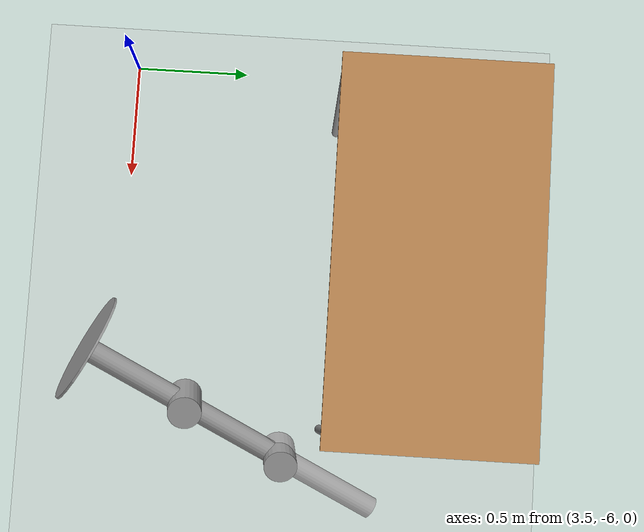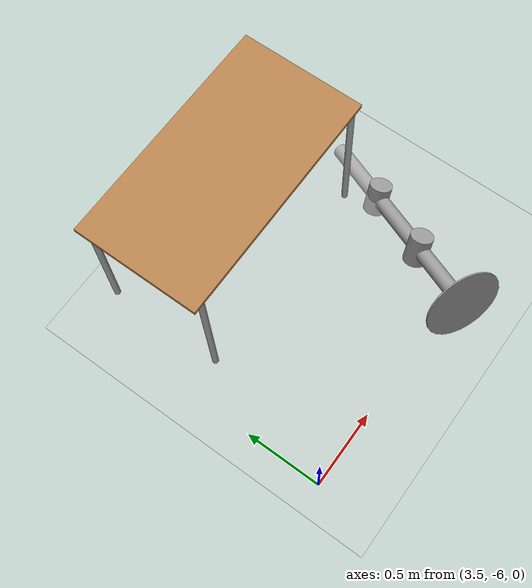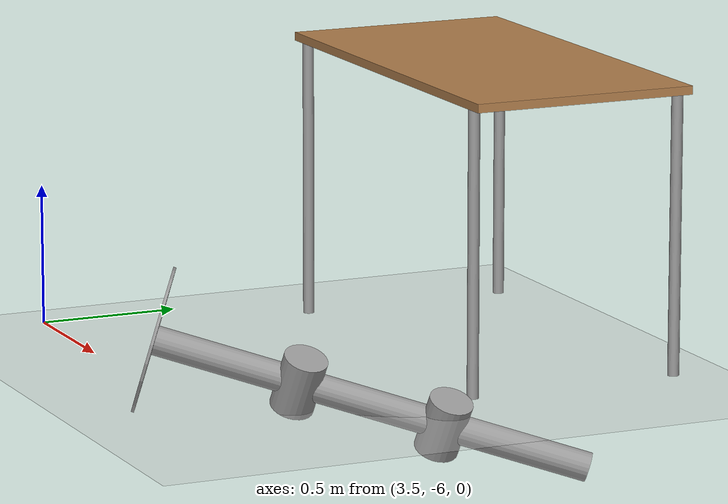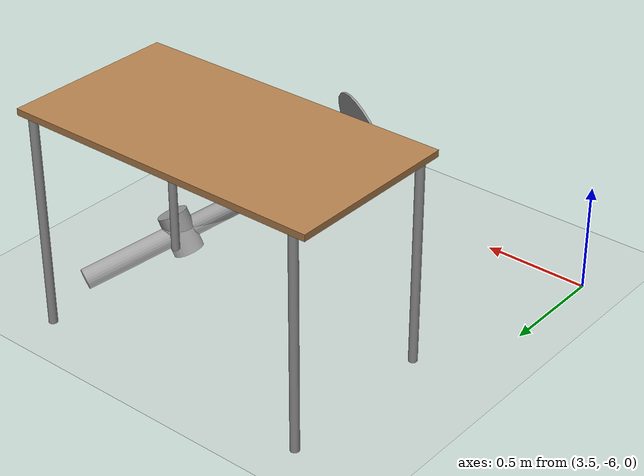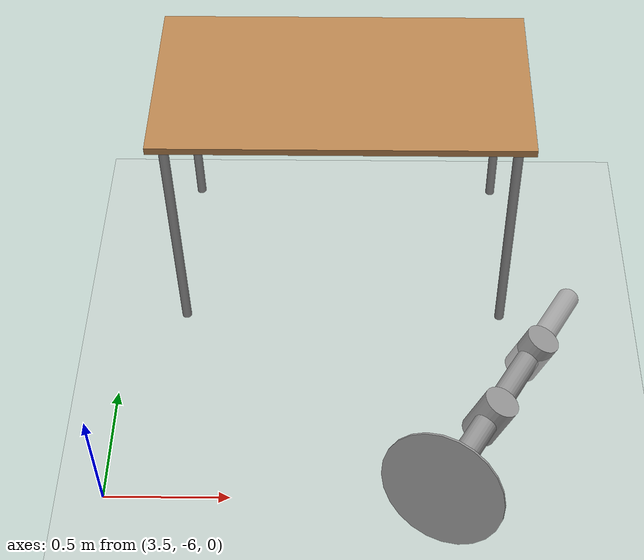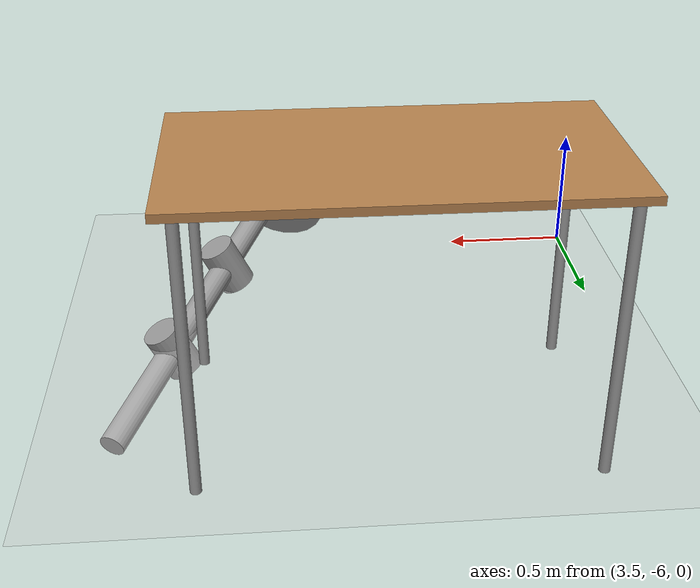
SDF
<sdf version="1.7">
 <world name="default">
  <model name="ground_plane">
   <static>1</static>
   <link name="link">
    <collision name="collision">
     <geometry><plane><normal>0 0 1</normal><size>100 100</size></plane></geometry>
     <surface>
      <contact><collide_bitmask>65535</collide_bitmask></contact>
      <friction><ode><mu>100</mu><mu2>50</mu2></ode></friction>
     </surface>
    </collision>
    <visual name="visual">
     <cast_shadows>0</cast_shadows>
     <geometry><plane><normal>0 0 1</normal><size>100 100</size></plane></geometry>
     <material>
      <script><uri>file://media/materials/scripts/gazebo.material</uri><name>Gazebo/Grey</name></script>
     </material>
    </visual>
   </link>
  </model>
  <model name="table">
   <static>1</static>
   <link name="link">
    <collision name="surface">
     <pose>0 0 1 0 -0 0</pose>
     <geometry><box><size>1.5 0.8 0.03</size></box></geometry>
     <surface><friction><ode><mu>0.6</mu><mu2>0.6</mu2></ode></friction></surface>
    </collision>
    <visual name="visual1">
     <pose>0 0 1 0 -0 0</pose>
     <geometry><box><size>1.5 0.8 0.03</size></box></geometry>
     <material>
      <script><uri>file://media/materials/scripts/gazebo.material</uri><name>Gazebo/Wood</name></script>
     </material>
    </visual>
    <collision name="front_left_leg">
     <pose>0.68 0.38 0.5 0 -0 0</pose>
     <geometry><cylinder><radius>0.02</radius><length>1</length></cylinder></geometry>
    </collision>
    <visual name="front_left_leg">
     <pose>0.68 0.38 0.5 0 -0 0</pose>
     <geometry><cylinder><radius>0.02</radius><length>1</length></cylinder></geometry>
     <material>
      <script><uri>file://media/materials/scripts/gazebo.material</uri><name>Gazebo/Grey</name></script>
     </material>
    </visual>
    <collision name="front_right_leg">
     <pose>0.68 -0.38 0.5 0 -0 0</pose>
     <geometry><cylinder><radius>0.02</radius><length>1</length></cylinder></geometry>
    </collision>
    <visual name="front_right_leg">
     <pose>0.68 -0.38 0.5 0 -0 0</pose>
     <geometry><cylinder><radius>0.02</radius><length>1</length></cylinder></geometry>
     <material>
      <script><uri>file://media/materials/scripts/gazebo.material</uri><name>Gazebo/Grey</name></script>
     </material>
    </visual>
    <collision name="back_right_leg">
     <pose>-0.68 -0.38 0.5 0 -0 0</pose>
     <geometry><cylinder><radius>0.02</radius><length>1</length></cylinder></geometry>
    </collision>
    <visual name="back_right_leg">
     <pose>-0.68 -0.38 0.5 0 -0 0</pose>
     <geometry><cylinder><radius>0.02</radius><length>1</length></cylinder></geometry>
     <material>
      <script><uri>file://media/materials/scripts/gazebo.material</uri><name>Gazebo/Grey</name></script>
     </material>
    </visual>
    <collision name="back_left_leg">
     <pose>-0.68 0.38 0.5 0 -0 0</pose>
     <geometry><cylinder><radius>0.02</radius><length>1</length></cylinder></geometry>
    </collision>
    <visual name="back_left_leg">
     <pose>-0.68 0.38 0.5 0 -0 0</pose>
     <geometry><cylinder><radius>0.02</radius><length>1</length></cylinder></geometry>
     <material>
      <script><uri>file://media/materials/scripts/gazebo.material</uri><name>Gazebo/Grey</name></script>
     </material>
    </visual>
   </link>
   <pose>4.42625 -4.69298 0 0 -0 0</pose>
  </model>
  <model name="ArmRobot">
   <link name="link_1">
    <pose>0 0 -0.375 0 -0 0</pose>
    <inertial>
     <mass>1</mass>
     <inertia><ixx>0.145833</ixx><ixy>0</ixy><ixz>0</ixz><iyy>0.145833</iyy><iyz>0</iyz><izz>0.125</izz></inertia>
    </inertial>
    <visual name="visual">
     <geometry><cylinder><radius>0.05</radius><length>0.5</length></cylinder></geometry>
     <material>
      <lighting>1</lighting>
      <script><uri>file://media/materials/scripts/gazebo.material</uri><name>Gazebo/Grey</name></script>
      <shader type="pixel"><normal_map>__default__</normal_map></shader>
      <ambient>0.3 0.3 0.3 1</ambient>
      <diffuse>0.7 0.7 0.7 1</diffuse>
      <specular>0.01 0.01 0.01 1</specular>
      <emissive>0 0 0 1</emissive>
     </material>
    </visual>
    <collision name="collision">
     <geometry><cylinder><radius>0.05</radius><length>0.5</length></cylinder></geometry>
     <surface>
      <friction>
       <ode><mu>1</mu><mu2>1</mu2><fdir1>0 0 0</fdir1><slip1>0</slip1><slip2>0</slip2></ode>
       <torsional>
        <coefficient>1</coefficient>
        <patch_radius>0</patch_radius>
        <surface_radius>0</surface_radius>
        <use_patch_radius>1</use_patch_radius>
        <ode><slip>0</slip></ode>
       </torsional>
      </friction>
      <bounce><restitution_coefficient>0</restitution_coefficient><threshold>1e+06</threshold></bounce>
      <contact>
       <collide_without_contact>0</collide_without_contact>
       <collide_without_contact_bitmask>1</collide_without_contact_bitmask>
       <collide_bitmask>1</collide_bitmask>
       <ode>
        <soft_cfm>0</soft_cfm>
        <soft_erp>0.2</soft_erp>
        <kp>1e+13</kp>
        <kd>1</kd>
        <max_vel>0.01</max_vel>
        <min_depth>0</min_depth>
       </ode>
       <bullet>
        <split_impulse>1</split_impulse>
        <split_impulse_penetration_threshold>-0.01</split_impulse_penetration_threshold>
        <soft_cfm>0</soft_cfm>
        <soft_erp>0.2</soft_erp>
        <kp>1e+13</kp>
        <kd>1</kd>
       </bullet>
      </contact>
     </surface>
    </collision>
   </link>
   <link name="link_1_clone">
    <pose>0 0 0.125 0 -0 0</pose>
    <inertial>
     <mass>1</mass>
     <inertia><ixx>0.145833</ixx><ixy>0</ixy><ixz>0</ixz><iyy>0.145833</iyy><iyz>0</iyz><izz>0.125</izz></inertia>
    </inertial>
    <visual name="visual">
     <geometry><cylinder><radius>0.05</radius><length>0.5</length></cylinder></geometry>
     <material>
      <lighting>1</lighting>
      <script><uri>file://media/materials/scripts/gazebo.material</uri><name>Gazebo/Grey</name></script>
      <shader type="pixel"><normal_map>__default__</normal_map></shader>
      <ambient>0.3 0.3 0.3 1</ambient>
      <diffuse>0.7 0.7 0.7 1</diffuse>
      <specular>0.01 0.01 0.01 1</specular>
      <emissive>0 0 0 1</emissive>
     </material>
    </visual>
    <collision name="collision">
     <geometry><cylinder><radius>0.05</radius><length>0.5</length></cylinder></geometry>
     <surface>
      <friction>
       <ode><mu>1</mu><mu2>1</mu2><fdir1>0 0 0</fdir1><slip1>0</slip1><slip2>0</slip2></ode>
       <torsional>
        <coefficient>1</coefficient>
        <patch_radius>0</patch_radius>
        <surface_radius>0</surface_radius>
        <use_patch_radius>1</use_patch_radius>
        <ode><slip>0</slip></ode>
       </torsional>
      </friction>
      <bounce><restitution_coefficient>0</restitution_coefficient><threshold>1e+06</threshold></bounce>
      <contact>
       <collide_without_contact>0</collide_without_contact>
       <collide_without_contact_bitmask>1</collide_without_contact_bitmask>
       <collide_bitmask>1</collide_bitmask>
       <ode>
        <soft_cfm>0</soft_cfm>
        <soft_erp>0.2</soft_erp>
        <kp>1e+13</kp>
        <kd>1</kd>
        <max_vel>0.01</max_vel>
        <min_depth>0</min_depth>
       </ode>
       <bullet>
        <split_impulse>1</split_impulse>
        <split_impulse_penetration_threshold>-0.01</split_impulse_penetration_threshold>
        <soft_cfm>0</soft_cfm>
        <soft_erp>0.2</soft_erp>
        <kp>1e+13</kp>
        <kd>1</kd>
       </bullet>
      </contact>
     </surface>
    </collision>
   </link>
   <link name="link_1_clone_clone">
    <pose>0 0 0.625 0 -0 0</pose>
    <inertial>
     <mass>1</mass>
     <inertia><ixx>0.145833</ixx><ixy>0</ixy><ixz>0</ixz><iyy>0.145833</iyy><iyz>0</iyz><izz>0.125</izz></inertia>
    </inertial>
    <visual name="visual">
     <geometry><cylinder><radius>0.05</radius><length>0.5</length></cylinder></geometry>
     <material>
      <lighting>1</lighting>
      <script><uri>file://media/materials/scripts/gazebo.material</uri><name>Gazebo/Grey</name></script>
      <shader type="pixel"><normal_map>__default__</normal_map></shader>
      <ambient>0.3 0.3 0.3 1</ambient>
      <diffuse>0.7 0.7 0.7 1</diffuse>
      <specular>0.01 0.01 0.01 1</specular>
      <emissive>0 0 0 1</emissive>
     </material>
    </visual>
    <collision name="collision">
     <geometry><cylinder><radius>0.05</radius><length>0.5</length></cylinder></geometry>
     <surface>
      <friction>
       <ode><mu>1</mu><mu2>1</mu2><fdir1>0 0 0</fdir1><slip1>0</slip1><slip2>0</slip2></ode>
       <torsional>
        <coefficient>1</coefficient>
        <patch_radius>0</patch_radius>
        <surface_radius>0</surface_radius>
        <use_patch_radius>1</use_patch_radius>
        <ode><slip>0</slip></ode>
       </torsional>
      </friction>
      <bounce><restitution_coefficient>0</restitution_coefficient><threshold>1e+06</threshold></bounce>
      <contact>
       <collide_without_contact>0</collide_without_contact>
       <collide_without_contact_bitmask>1</collide_without_contact_bitmask>
       <collide_bitmask>1</collide_bitmask>
       <ode>
        <soft_cfm>0</soft_cfm>
        <soft_erp>0.2</soft_erp>
        <kp>1e+13</kp>
        <kd>1</kd>
        <max_vel>0.01</max_vel>
        <min_depth>0</min_depth>
       </ode>
       <bullet>
        <split_impulse>1</split_impulse>
        <split_impulse_penetration_threshold>-0.01</split_impulse_penetration_threshold>
        <soft_cfm>0</soft_cfm>
        <soft_erp>0.2</soft_erp>
        <kp>1e+13</kp>
        <kd>1</kd>
       </bullet>
      </contact>
     </surface>
    </collision>
   </link>
   <link name="link_2">
    <pose>0 0 -0.625 0 -0 0</pose>
    <inertial>
     <mass>1</mass>
     <inertia><ixx>0.145833</ixx><ixy>0</ixy><ixz>0</ixz><iyy>0.145833</iyy><iyz>0</iyz><izz>0.125</izz></inertia>
    </inertial>
    <visual name="visual">
     <geometry><cylinder><radius>0.25</radius><length>0.01</length></cylinder></geometry>
     <material>
      <lighting>1</lighting>
      <script><uri>file://media/materials/scripts/gazebo.material</uri><name>Gazebo/Grey</name></script>
      <shader type="pixel"><normal_map>__default__</normal_map></shader>
      <ambient>0.3 0.3 0.3 1</ambient>
      <diffuse>0.7 0.7 0.7 1</diffuse>
      <specular>0.01 0.01 0.01 1</specular>
      <emissive>0 0 0 1</emissive>
     </material>
    </visual>
    <collision name="collision">
     <geometry><cylinder><radius>0.25</radius><length>0.01</length></cylinder></geometry>
     <surface>
      <friction>
       <ode><mu>1</mu><mu2>1</mu2><fdir1>0 0 0</fdir1><slip1>0</slip1><slip2>0</slip2></ode>
       <torsional>
        <coefficient>1</coefficient>
        <patch_radius>0</patch_radius>
        <surface_radius>0</surface_radius>
        <use_patch_radius>1</use_patch_radius>
        <ode><slip>0</slip></ode>
       </torsional>
      </friction>
      <bounce><restitution_coefficient>0</restitution_coefficient><threshold>1e+06</threshold></bounce>
      <contact>
       <collide_without_contact>0</collide_without_contact>
       <collide_without_contact_bitmask>1</collide_without_contact_bitmask>
       <collide_bitmask>1</collide_bitmask>
       <ode>
        <soft_cfm>0</soft_cfm>
        <soft_erp>0.2</soft_erp>
        <kp>1e+13</kp>
        <kd>1</kd>
        <max_vel>0.01</max_vel>
        <min_depth>0</min_depth>
       </ode>
       <bullet>
        <split_impulse>1</split_impulse>
        <split_impulse_penetration_threshold>-0.01</split_impulse_penetration_threshold>
        <soft_cfm>0</soft_cfm>
        <soft_erp>0.2</soft_erp>
        <kp>1e+13</kp>
        <kd>1</kd>
       </bullet>
      </contact>
     </surface>
    </collision>
   </link>
   <link name="link_3">
    <pose>0 0 -0.125 0 -0 0</pose>
    <inertial>
     <mass>1</mass>
     <inertia><ixx>0.145833</ixx><ixy>0</ixy><ixz>0</ixz><iyy>0.145833</iyy><iyz>0</iyz><izz>0.125</izz></inertia>
    </inertial>
    <visual name="visual">
     <pose>0 0 0 0 -1.5707 0</pose>
     <geometry><cylinder><radius>0.075</radius><length>0.2</length></cylinder></geometry>
     <material>
      <lighting>1</lighting>
      <script><uri>file://media/materials/scripts/gazebo.material</uri><name>Gazebo/Grey</name></script>
      <shader type="pixel"><normal_map>__default__</normal_map></shader>
      <ambient>0.3 0.3 0.3 1</ambient>
      <diffuse>0.7 0.7 0.7 1</diffuse>
      <specular>0.01 0.01 0.01 1</specular>
      <emissive>0 0 0 1</emissive>
     </material>
    </visual>
    <collision name="collision">
     <pose>0 0 0 0 -1.5707 0</pose>
     <geometry><cylinder><radius>0.075</radius><length>0.2</length></cylinder></geometry>
     <surface>
      <friction>
       <ode><mu>1</mu><mu2>1</mu2><fdir1>0 0 0</fdir1><slip1>0</slip1><slip2>0</slip2></ode>
       <torsional>
        <coefficient>1</coefficient>
        <patch_radius>0</patch_radius>
        <surface_radius>0</surface_radius>
        <use_patch_radius>1</use_patch_radius>
        <ode><slip>0</slip></ode>
       </torsional>
      </friction>
      <bounce><restitution_coefficient>0</restitution_coefficient><threshold>1e+06</threshold></bounce>
      <contact>
       <collide_without_contact>0</collide_without_contact>
       <collide_without_contact_bitmask>1</collide_without_contact_bitmask>
       <collide_bitmask>1</collide_bitmask>
       <ode>
        <soft_cfm>0</soft_cfm>
        <soft_erp>0.2</soft_erp>
        <kp>1e+13</kp>
        <kd>1</kd>
        <max_vel>0.01</max_vel>
        <min_depth>0</min_depth>
       </ode>
       <bullet>
        <split_impulse>1</split_impulse>
        <split_impulse_penetration_threshold>-0.01</split_impulse_penetration_threshold>
        <soft_cfm>0</soft_cfm>
        <soft_erp>0.2</soft_erp>
        <kp>1e+13</kp>
        <kd>1</kd>
       </bullet>
      </contact>
     </surface>
    </collision>
   </link>
   <link name="link_3_clone">
    <pose>0 0 0.375 0 -0 0</pose>
    <inertial>
     <mass>1</mass>
     <inertia><ixx>0.145833</ixx><ixy>0</ixy><ixz>0</ixz><iyy>0.145833</iyy><iyz>0</iyz><izz>0.125</izz></inertia>
    </inertial>
    <visual name="visual">
     <pose>0 0 0 0 -1.5707 0</pose>
     <geometry><cylinder><radius>0.075</radius><length>0.2</length></cylinder></geometry>
     <material>
      <lighting>1</lighting>
      <script><uri>file://media/materials/scripts/gazebo.material</uri><name>Gazebo/Grey</name></script>
      <shader type="pixel"><normal_map>__default__</normal_map></shader>
      <ambient>0.3 0.3 0.3 1</ambient>
      <diffuse>0.7 0.7 0.7 1</diffuse>
      <specular>0.01 0.01 0.01 1</specular>
      <emissive>0 0 0 1</emissive>
     </material>
    </visual>
    <collision name="collision">
     <pose>0 0 0 0 -1.5707 0</pose>
     <geometry><cylinder><radius>0.075</radius><length>0.2</length></cylinder></geometry>
     <surface>
      <friction>
       <ode><mu>1</mu><mu2>1</mu2><fdir1>0 0 0</fdir1><slip1>0</slip1><slip2>0</slip2></ode>
       <torsional>
        <coefficient>1</coefficient>
        <patch_radius>0</patch_radius>
        <surface_radius>0</surface_radius>
        <use_patch_radius>1</use_patch_radius>
        <ode><slip>0</slip></ode>
       </torsional>
      </friction>
      <bounce><restitution_coefficient>0</restitution_coefficient><threshold>1e+06</threshold></bounce>
      <contact>
       <collide_without_contact>0</collide_without_contact>
       <collide_without_contact_bitmask>1</collide_without_contact_bitmask>
       <collide_bitmask>1</collide_bitmask>
       <ode>
        <soft_cfm>0</soft_cfm>
        <soft_erp>0.2</soft_erp>
        <kp>1e+13</kp>
        <kd>1</kd>
        <max_vel>0.01</max_vel>
        <min_depth>0</min_depth>
       </ode>
       <bullet>
        <split_impulse>1</split_impulse>
        <split_impulse_penetration_threshold>-0.01</split_impulse_penetration_threshold>
        <soft_cfm>0</soft_cfm>
        <soft_erp>0.2</soft_erp>
        <kp>1e+13</kp>
        <kd>1</kd>
       </bullet>
      </contact>
     </surface>
    </collision>
   </link>
   <joint name="link_1_JOINT_1" type="revolute2">
    <parent>link_1</parent>
    <child>link_3</child>
    <axis>
     <xyz>1 0 0</xyz>
     <limit>
      <lower>-1.79769e+308</lower>
      <upper>1.79769e+308</upper>
      <effort>-1</effort>
      <velocity>-1</velocity>
     </limit>
     <dynamics>
      <spring_reference>0</spring_reference>
      <spring_stiffness>0</spring_stiffness>
      <damping>0</damping>
     </dynamics>
    </axis>
    <axis2>
     <xyz>0 1 0</xyz>
     <dynamics>
      <spring_reference>0</spring_reference>
      <spring_stiffness>0</spring_stiffness>
      <damping>0</damping>
     </dynamics>
     <limit>
      <lower>-1.79769e+308</lower>
      <upper>1.79769e+308</upper>
      <effort>-1</effort>
      <velocity>-1</velocity>
     </limit>
    </axis2>
    <physics>
     <ode><limit><cfm>0</cfm><erp>0.2</erp></limit><suspension><cfm>0</cfm><erp>0.2</erp></suspension></ode>
    </physics>
   </joint>
   <joint name="link_1_clone_JOINT_3" type="revolute">
    <parent>link_1_clone</parent>
    <child>link_3_clone</child>
    <axis>
     <xyz>1 0 0</xyz>
     <limit>
      <lower>-1.79769e+308</lower>
      <upper>1.79769e+308</upper>
      <effort>-1</effort>
      <velocity>-1</velocity>
     </limit>
     <dynamics>
      <spring_reference>0</spring_reference>
      <spring_stiffness>0</spring_stiffness>
      <damping>0</damping>
     </dynamics>
    </axis>
    <physics>
     <ode><limit><cfm>0</cfm><erp>0.2</erp></limit><suspension><cfm>0</cfm><erp>0.2</erp></suspension></ode>
    </physics>
   </joint>
   <joint name="link_2_JOINT_0" type="fixed">
    <parent>link_2</parent>
    <child>link_1</child>
    <physics>
     <ode><limit><cfm>0</cfm><erp>0.2</erp></limit><suspension><cfm>0</cfm><erp>0.2</erp></suspension></ode>
    </physics>
   </joint>
   <joint name="link_3_JOINT_2" type="fixed">
    <parent>link_3</parent>
    <child>link_1_clone</child>
    <physics>
     <ode><limit><cfm>0</cfm><erp>0.2</erp></limit><suspension><cfm>0</cfm><erp>0.2</erp></suspension></ode>
    </physics>
   </joint>
   <joint name="link_3_clone_JOINT_4" type="fixed">
    <parent>link_3_clone</parent>
    <child>link_1_clone_clone</child>
    <physics>
     <ode><limit><cfm>0</cfm><erp>0.2</erp></limit><suspension><cfm>0</cfm><erp>0.2</erp></suspension></ode>
    </physics>
   </joint>
   <static>0</static>
   <pose>5.08153 -5.56668 0.06469 -2.28065 -1.12252 0.202148</pose>
  </model>
 </world>
</sdf>
